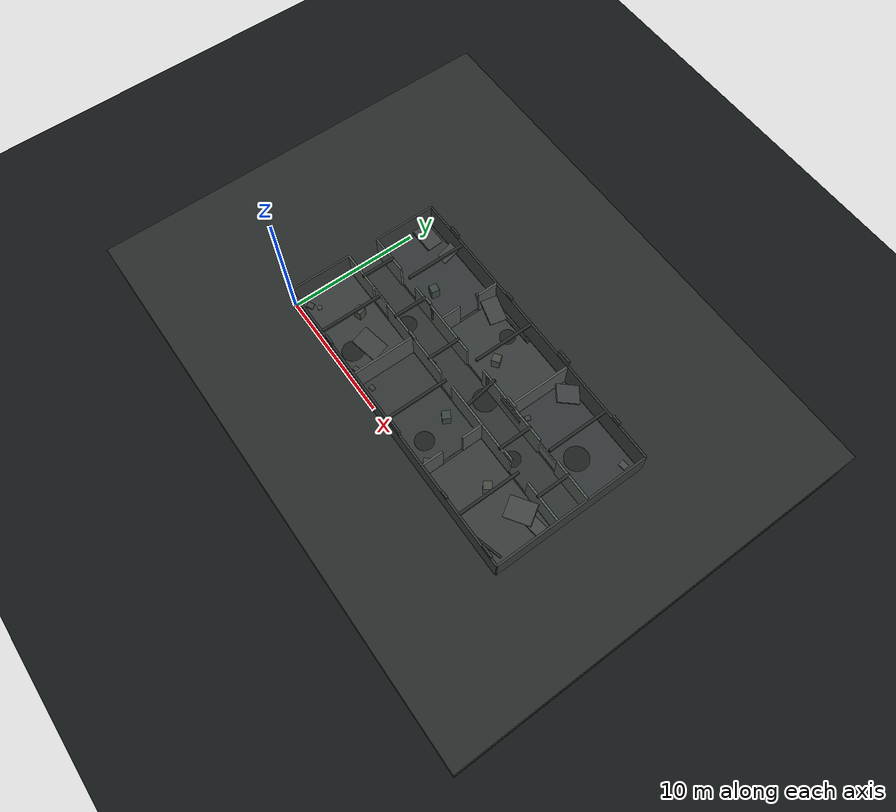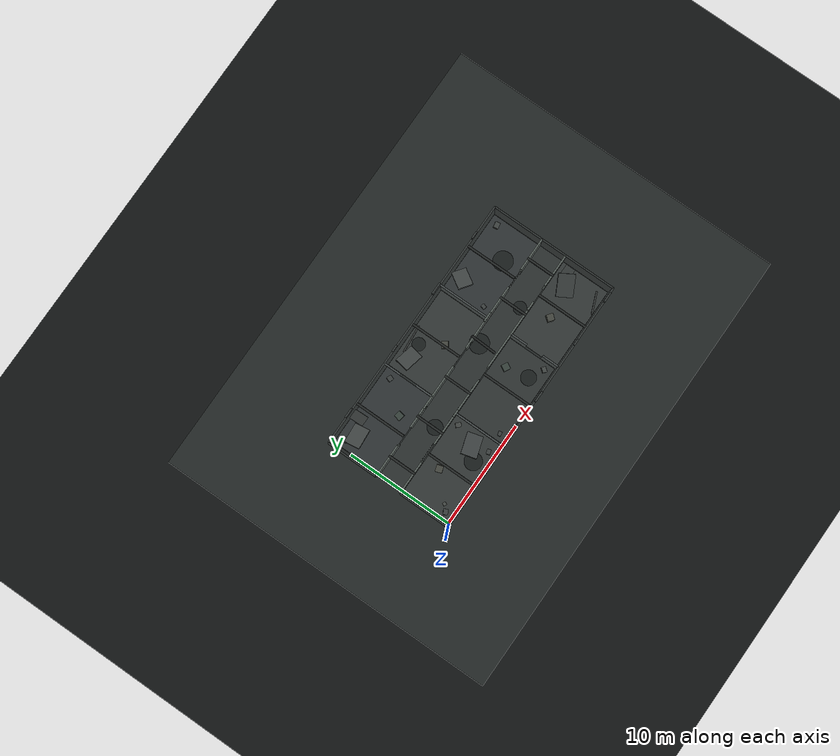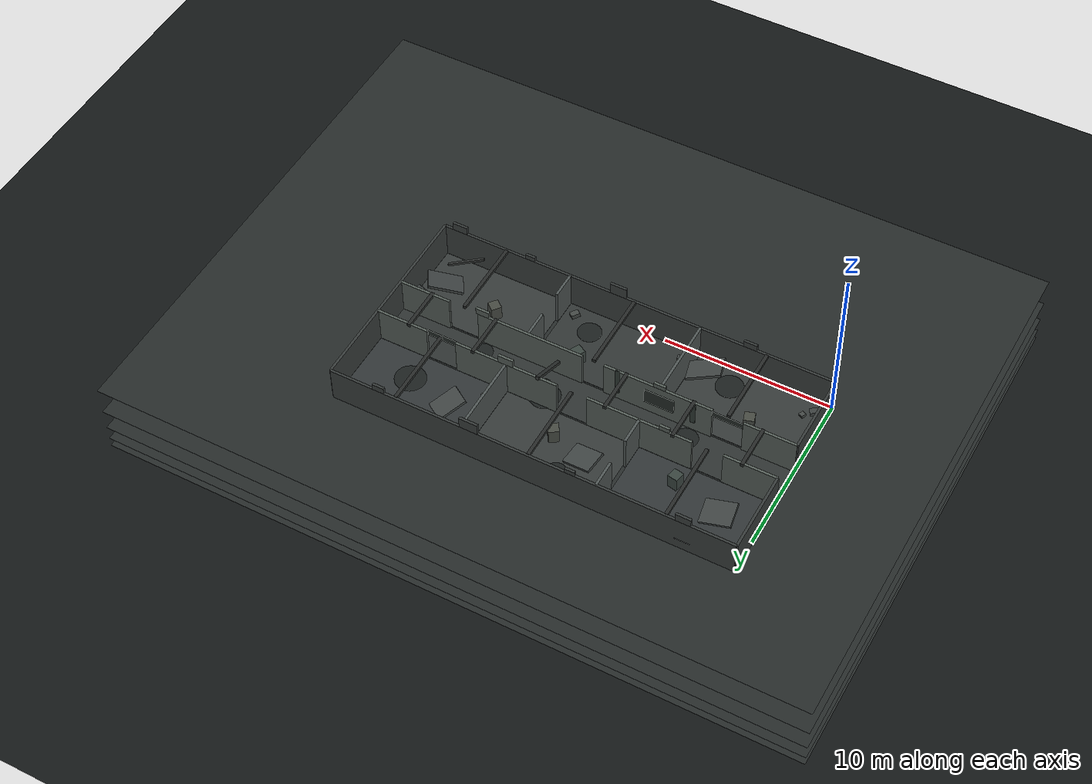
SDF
<sdf version="1.10">
 <world name="sar_building_v2">
  <physics name="1ms" type="ignored">
   <max_step_size>0.001</max_step_size>
   <real_time_factor>1</real_time_factor>
   <real_time_update_rate>1000</real_time_update_rate>
  </physics>
  <plugin name="gz::sim::systems::Physics" filename="gz-sim-physics-system"/>
  <plugin name="gz::sim::systems::UserCommands" filename="gz-sim-user-commands-system"/>
  <plugin name="gz::sim::systems::SceneBroadcaster" filename="gz-sim-scene-broadcaster-system"/>
  <plugin name="gz::sim::systems::Contact" filename="gz-sim-contact-system"/>
  <plugin filename="gz-sim-imu-system" name="gz::sim::systems::Imu"/>
  <plugin filename="gz-sim-sensors-system" name="gz::sim::systems::Sensors">
   <render_engine>ogre2</render_engine>
  </plugin>
  <plugin filename="gz-sim-particle-emitter-system" name="gz::sim::systems::ParticleEmitter"/>
  <gravity>0 0 -9.8</gravity>
  <magnetic_field>5.5645e-06 2.28758e-05 -4.23884e-05</magnetic_field>
  <atmosphere type="adiabatic"/>
  <scene>
   <ambient>0.17 0.19 0.19 1</ambient>
   <background>0.13 0.15 0.15 1</background>
   <shadows>true</shadows>
   <fog><color>0.16 0.18 0.18 1</color><type>exp2</type><density>0.03</density></fog>
  </scene>
  <model name="ground_plane">
   <static>true</static>
   <link name="link">
    <collision name="collision">
     <geometry><plane><normal>0 0 1</normal><size>40 30</size></plane></geometry>
    </collision>
    <visual name="visual">
     <geometry><plane><normal>0 0 1</normal><size>40 30</size></plane></geometry>
     <material>
      <ambient>0.04 0.05 0.05 1</ambient>
      <diffuse>0.07 0.08 0.08 1</diffuse>
      <specular>0.10 0.10 0.10 1</specular>
      <pbr><metal><roughness>0.35</roughness><metalness>0.0</metalness></metal></pbr>
     </material>
    </visual>
    <pose>12 6 0 0 0 0</pose>
    <inertial>
     <mass>1</mass>
     <inertia><ixx>1</ixx><ixy>0</ixy><ixz>0</ixz><iyy>1</iyy><iyz>0</iyz><izz>1</izz></inertia>
    </inertial>
   </link>
  </model>
  <light name="sun" type="directional">
   <pose>12 6 20 0 0 0</pose>
   <intensity>0.32</intensity>
   <direction>-0.4 0.2 -0.9</direction>
   <diffuse>0.55 0.62 0.60 1</diffuse>
   <specular>0.05 0.05 0.05 1</specular>
   <attenuation>
    <range>1000</range>
    <linear>0.01</linear>
    <constant>0.9</constant>
    <quadratic>0.001</quadratic>
   </attenuation>
   <spot><inner_angle>0</inner_angle><outer_angle>0</outer_angle><falloff>0</falloff></spot>
  </light>
  <model name="floor_zones">
   <static>true</static>
   <link name="floor_corridor">
    <pose>12 6 0.01 0 0 0</pose>
    <visual name="v">
     <geometry><box><size>24 2.4 0.02</size></box></geometry>
     <material>
      <ambient>0.07 0.08 0.08 1</ambient>
      <diffuse>0.11 0.12 0.12 1</diffuse>
      <specular>0.15 0.15 0.15 1</specular>
      <pbr><metal><roughness>0.25</roughness><metalness>0.0</metalness></metal></pbr>
     </material>
    </visual>
   </link>
   <link name="floor_s1">
    <pose>4 2.4 0.01 0 0 0</pose>
    <visual name="v">
     <geometry><box><size>7.8 4.6 0.02</size></box></geometry>
     <material>
      <ambient>0.09 0.10 0.10 1</ambient>
      <diffuse>0.14 0.15 0.15 1</diffuse>
      <specular>0.05 0.05 0.05 1</specular>
      <pbr><metal><roughness>0.5</roughness><metalness>0.0</metalness></metal></pbr>
     </material>
    </visual>
   </link>
   <link name="floor_s2">
    <pose>12 2.4 0.01 0 0 0</pose>
    <visual name="v">
     <geometry><box><size>7.8 4.6 0.02</size></box></geometry>
     <material>
      <ambient>0.08 0.09 0.09 1</ambient>
      <diffuse>0.12 0.13 0.13 1</diffuse>
      <specular>0.05 0.05 0.05 1</specular>
      <pbr><metal><roughness>0.5</roughness><metalness>0.0</metalness></metal></pbr>
     </material>
    </visual>
   </link>
   <link name="floor_s3">
    <pose>20 2.4 0.01 0 0 0</pose>
    <visual name="v">
     <geometry><box><size>7.8 4.6 0.02</size></box></geometry>
     <material>
      <ambient>0.09 0.10 0.10 1</ambient>
      <diffuse>0.14 0.15 0.15 1</diffuse>
      <specular>0.05 0.05 0.05 1</specular>
      <pbr><metal><roughness>0.5</roughness><metalness>0.0</metalness></metal></pbr>
     </material>
    </visual>
   </link>
   <link name="floor_n1">
    <pose>4 9.6 0.01 0 0 0</pose>
    <visual name="v">
     <geometry><box><size>7.8 4.6 0.02</size></box></geometry>
     <material>
      <ambient>0.08 0.09 0.10 1</ambient>
      <diffuse>0.12 0.13 0.14 1</diffuse>
      <specular>0.05 0.05 0.05 1</specular>
      <pbr><metal><roughness>0.5</roughness><metalness>0.0</metalness></metal></pbr>
     </material>
    </visual>
   </link>
   <link name="floor_n2">
    <pose>12 9.6 0.01 0 0 0</pose>
    <visual name="v">
     <geometry><box><size>7.8 4.6 0.02</size></box></geometry>
     <material>
      <ambient>0.09 0.10 0.10 1</ambient>
      <diffuse>0.14 0.15 0.15 1</diffuse>
      <specular>0.05 0.05 0.05 1</specular>
      <pbr><metal><roughness>0.5</roughness><metalness>0.0</metalness></metal></pbr>
     </material>
    </visual>
   </link>
   <link name="floor_n3">
    <pose>20 9.6 0.01 0 0 0</pose>
    <visual name="v">
     <geometry><box><size>7.8 4.6 0.02</size></box></geometry>
     <material>
      <ambient>0.08 0.09 0.10 1</ambient>
      <diffuse>0.12 0.13 0.14 1</diffuse>
      <specular>0.05 0.05 0.05 1</specular>
      <pbr><metal><roughness>0.5</roughness><metalness>0.0</metalness></metal></pbr>
     </material>
    </visual>
   </link>
  </model>
  <model name="puddles">
   <static>true</static>
   <link name="p1">
    <pose>6.0 5.6 0.022 0 0 0</pose>
    <visual name="v">
     <cast_shadows>false</cast_shadows>
     <geometry><cylinder><radius>0.7</radius><length>0.004</length></cylinder></geometry>
     <material>
      <ambient>0.01 0.015 0.015 1</ambient>
      <diffuse>0.02 0.03 0.03 1</diffuse>
      <specular>0.6 0.6 0.6 1</specular>
      <pbr><metal><roughness>0.04</roughness><metalness>0.0</metalness></metal></pbr>
     </material>
    </visual>
   </link>
   <link name="p2">
    <pose>14.0 6.6 0.022 0 0 0</pose>
    <visual name="v">
     <cast_shadows>false</cast_shadows>
     <geometry><cylinder><radius>0.9</radius><length>0.004</length></cylinder></geometry>
     <material>
      <ambient>0.01 0.015 0.015 1</ambient>
      <diffuse>0.02 0.03 0.03 1</diffuse>
      <specular>0.6 0.6 0.6 1</specular>
      <pbr><metal><roughness>0.04</roughness><metalness>0.0</metalness></metal></pbr>
     </material>
    </visual>
   </link>
   <link name="p3">
    <pose>18.5 5.5 0.022 0 0 0</pose>
    <visual name="v">
     <cast_shadows>false</cast_shadows>
     <geometry><cylinder><radius>0.6</radius><length>0.004</length></cylinder></geometry>
     <material>
      <ambient>0.01 0.015 0.015 1</ambient>
      <diffuse>0.02 0.03 0.03 1</diffuse>
      <specular>0.6 0.6 0.6 1</specular>
      <pbr><metal><roughness>0.04</roughness><metalness>0.0</metalness></metal></pbr>
     </material>
    </visual>
   </link>
   <link name="p4">
    <pose>5.5 1.3 0.022 0 0 0</pose>
    <visual name="v">
     <cast_shadows>false</cast_shadows>
     <geometry><cylinder><radius>0.8</radius><length>0.004</length></cylinder></geometry>
     <material>
      <ambient>0.01 0.015 0.015 1</ambient>
      <diffuse>0.02 0.03 0.03 1</diffuse>
      <specular>0.6 0.6 0.6 1</specular>
      <pbr><metal><roughness>0.04</roughness><metalness>0.0</metalness></metal></pbr>
     </material>
    </visual>
   </link>
   <link name="p5">
    <pose>21.0 9.0 0.022 0 0 0</pose>
    <visual name="v">
     <cast_shadows>false</cast_shadows>
     <geometry><cylinder><radius>0.9</radius><length>0.004</length></cylinder></geometry>
     <material>
      <ambient>0.01 0.015 0.015 1</ambient>
      <diffuse>0.02 0.03 0.03 1</diffuse>
      <specular>0.6 0.6 0.6 1</specular>
      <pbr><metal><roughness>0.04</roughness><metalness>0.0</metalness></metal></pbr>
     </material>
    </visual>
   </link>
   <link name="p6">
    <pose>11.0 10.8 0.022 0 0 0</pose>
    <visual name="v">
     <cast_shadows>false</cast_shadows>
     <geometry><cylinder><radius>0.6</radius><length>0.004</length></cylinder></geometry>
     <material>
      <ambient>0.01 0.015 0.015 1</ambient>
      <diffuse>0.02 0.03 0.03 1</diffuse>
      <specular>0.6 0.6 0.6 1</specular>
      <pbr><metal><roughness>0.04</roughness><metalness>0.0</metalness></metal></pbr>
     </material>
    </visual>
   </link>
   <link name="p7">
    <pose>14.0 1.5 0.022 0 0 0</pose>
    <visual name="v">
     <cast_shadows>false</cast_shadows>
     <geometry><cylinder><radius>0.7</radius><length>0.004</length></cylinder></geometry>
     <material>
      <ambient>0.01 0.015 0.015 1</ambient>
      <diffuse>0.02 0.03 0.03 1</diffuse>
      <specular>0.6 0.6 0.6 1</specular>
      <pbr><metal><roughness>0.04</roughness><metalness>0.0</metalness></metal></pbr>
     </material>
    </visual>
   </link>
  </model>
  <model name="ruin_structure">
   <static>true</static>
   <link name="j_c1">
    <pose>2 6 2.13 0 0 0</pose>
    <visual name="v">
     <geometry><box><size>0.2 2.6 0.18</size></box></geometry>
     <material><ambient>0.04 0.04 0.04 1</ambient><diffuse>0.07 0.07 0.07 1</diffuse></material>
    </visual>
   </link>
   <link name="j_c2">
    <pose>6 6 2.13 0 0 0</pose>
    <visual name="v">
     <geometry><box><size>0.2 2.6 0.18</size></box></geometry>
     <material><ambient>0.04 0.04 0.04 1</ambient><diffuse>0.07 0.07 0.07 1</diffuse></material>
    </visual>
   </link>
   <link name="j_c3">
    <pose>10 6 2.13 0 0 0</pose>
    <visual name="v">
     <geometry><box><size>0.2 2.6 0.18</size></box></geometry>
     <material><ambient>0.04 0.04 0.04 1</ambient><diffuse>0.07 0.07 0.07 1</diffuse></material>
    </visual>
   </link>
   <link name="j_c4_fallen">
    <pose>14 6.2 1.75 0.45 0 0</pose>
    <visual name="v">
     <geometry><box><size>0.2 2.6 0.18</size></box></geometry>
     <material><ambient>0.04 0.04 0.04 1</ambient><diffuse>0.07 0.07 0.07 1</diffuse></material>
    </visual>
   </link>
   <link name="j_c5">
    <pose>18 6 2.13 0 0 0</pose>
    <visual name="v">
     <geometry><box><size>0.2 2.6 0.18</size></box></geometry>
     <material><ambient>0.04 0.04 0.04 1</ambient><diffuse>0.07 0.07 0.07 1</diffuse></material>
    </visual>
   </link>
   <link name="j_c6">
    <pose>22 6 2.13 0 0 0</pose>
    <visual name="v">
     <geometry><box><size>0.2 2.6 0.18</size></box></geometry>
     <material><ambient>0.04 0.04 0.04 1</ambient><diffuse>0.07 0.07 0.07 1</diffuse></material>
    </visual>
   </link>
   <link name="j_s1">
    <pose>4 2.4 2.13 0 0 0</pose>
    <visual name="v">
     <geometry><box><size>0.2 4.7 0.18</size></box></geometry>
     <material><ambient>0.04 0.04 0.04 1</ambient><diffuse>0.07 0.07 0.07 1</diffuse></material>
    </visual>
   </link>
   <link name="j_s2">
    <pose>12 2.4 2.13 0 0 0</pose>
    <visual name="v">
     <geometry><box><size>0.2 4.7 0.18</size></box></geometry>
     <material><ambient>0.04 0.04 0.04 1</ambient><diffuse>0.07 0.07 0.07 1</diffuse></material>
    </visual>
   </link>
   <link name="j_s3">
    <pose>20 2.4 2.13 0 0 0</pose>
    <visual name="v">
     <geometry><box><size>0.2 4.7 0.18</size></box></geometry>
     <material><ambient>0.04 0.04 0.04 1</ambient><diffuse>0.07 0.07 0.07 1</diffuse></material>
    </visual>
   </link>
   <link name="j_n1">
    <pose>4 9.6 2.13 0 0 0</pose>
    <visual name="v">
     <geometry><box><size>0.2 4.7 0.18</size></box></geometry>
     <material><ambient>0.04 0.04 0.04 1</ambient><diffuse>0.07 0.07 0.07 1</diffuse></material>
    </visual>
   </link>
   <link name="j_n2">
    <pose>12 9.6 2.13 0 0 0</pose>
    <visual name="v">
     <geometry><box><size>0.2 4.7 0.18</size></box></geometry>
     <material><ambient>0.04 0.04 0.04 1</ambient><diffuse>0.07 0.07 0.07 1</diffuse></material>
    </visual>
   </link>
   <link name="j_n3">
    <pose>20 9.6 2.13 0 0 0</pose>
    <visual name="v">
     <geometry><box><size>0.2 4.7 0.18</size></box></geometry>
     <material><ambient>0.04 0.04 0.04 1</ambient><diffuse>0.07 0.07 0.07 1</diffuse></material>
    </visual>
   </link>
   <link name="slab_h1">
    <pose>6.6 2.2 1.85 0.12 0.35 0.3</pose>
    <visual name="v">
     <geometry><box><size>2.0 1.4 0.15</size></box></geometry>
     <material><ambient>0.12 0.13 0.13 1</ambient><diffuse>0.19 0.20 0.20 1</diffuse></material>
    </visual>
   </link>
   <link name="slab_h2">
    <pose>9.5 10.6 1.9 -0.15 0.3 -0.2</pose>
    <visual name="v">
     <geometry><box><size>1.8 1.3 0.15</size></box></geometry>
     <material><ambient>0.12 0.13 0.13 1</ambient><diffuse>0.19 0.20 0.20 1</diffuse></material>
    </visual>
   </link>
   <link name="slab_h3">
    <pose>22.0 3.4 1.8 0.2 -0.3 0.5</pose>
    <visual name="v">
     <geometry><box><size>2.0 1.5 0.15</size></box></geometry>
     <material><ambient>0.12 0.13 0.13 1</ambient><diffuse>0.19 0.20 0.20 1</diffuse></material>
    </visual>
   </link>
   <link name="slab_h4">
    <pose>17.5 10.8 1.9 0.1 0.35 1.0</pose>
    <visual name="v">
     <geometry><box><size>1.7 1.3 0.15</size></box></geometry>
     <material><ambient>0.12 0.13 0.13 1</ambient><diffuse>0.19 0.20 0.20 1</diffuse></material>
    </visual>
   </link>
   <link name="slab_h5">
    <pose>1.8 10.4 1.85 -0.2 0.25 0.1</pose>
    <visual name="v">
     <geometry><box><size>1.8 1.4 0.15</size></box></geometry>
     <material><ambient>0.12 0.13 0.13 1</ambient><diffuse>0.19 0.20 0.20 1</diffuse></material>
    </visual>
   </link>
   <link name="top_n1">
    <pose>3.0 12 2.45 0 0 0</pose>
    <visual name="v">
     <geometry><box><size>0.9 0.15 0.5</size></box></geometry>
     <material><ambient>0.09 0.10 0.10 1</ambient><diffuse>0.14 0.15 0.15 1</diffuse></material>
    </visual>
   </link>
   <link name="top_n2">
    <pose>9.5 12 2.35 0 0 0</pose>
    <visual name="v">
     <geometry><box><size>0.6 0.15 0.3</size></box></geometry>
     <material><ambient>0.09 0.10 0.10 1</ambient><diffuse>0.14 0.15 0.15 1</diffuse></material>
    </visual>
   </link>
   <link name="top_n3">
    <pose>15.5 12 2.55 0 0 0</pose>
    <visual name="v">
     <geometry><box><size>1.1 0.15 0.7</size></box></geometry>
     <material><ambient>0.09 0.10 0.10 1</ambient><diffuse>0.14 0.15 0.15 1</diffuse></material>
    </visual>
   </link>
   <link name="top_n4">
    <pose>21.0 12 2.4 0 0 0</pose>
    <visual name="v">
     <geometry><box><size>0.7 0.15 0.4</size></box></geometry>
     <material><ambient>0.09 0.10 0.10 1</ambient><diffuse>0.14 0.15 0.15 1</diffuse></material>
    </visual>
   </link>
   <link name="top_s1">
    <pose>5.0 0 2.4 0 0 0</pose>
    <visual name="v">
     <geometry><box><size>0.8 0.15 0.4</size></box></geometry>
     <material><ambient>0.09 0.10 0.10 1</ambient><diffuse>0.14 0.15 0.15 1</diffuse></material>
    </visual>
   </link>
   <link name="top_s2">
    <pose>13.0 0 2.55 0 0 0</pose>
    <visual name="v">
     <geometry><box><size>1.0 0.15 0.7</size></box></geometry>
     <material><ambient>0.09 0.10 0.10 1</ambient><diffuse>0.14 0.15 0.15 1</diffuse></material>
    </visual>
   </link>
   <link name="top_s3">
    <pose>18.5 0 2.35 0 0 0</pose>
    <visual name="v">
     <geometry><box><size>0.6 0.15 0.3</size></box></geometry>
     <material><ambient>0.09 0.10 0.10 1</ambient><diffuse>0.14 0.15 0.15 1</diffuse></material>
    </visual>
   </link>
   <link name="top_s4">
    <pose>23.0 0 2.45 0 0 0</pose>
    <visual name="v">
     <geometry><box><size>0.9 0.15 0.5</size></box></geometry>
     <material><ambient>0.09 0.10 0.10 1</ambient><diffuse>0.14 0.15 0.15 1</diffuse></material>
    </visual>
   </link>
   <link name="top_c1">
    <pose>8.0 4.8 2.35 0 0 0</pose>
    <visual name="v">
     <geometry><box><size>0.7 0.15 0.3</size></box></geometry>
     <material><ambient>0.20 0.22 0.21 1</ambient><diffuse>0.30 0.33 0.31 1</diffuse></material>
    </visual>
   </link>
   <link name="top_c2">
    <pose>16.0 7.2 2.45 0 0 0</pose>
    <visual name="v">
     <geometry><box><size>0.9 0.15 0.5</size></box></geometry>
     <material><ambient>0.20 0.22 0.21 1</ambient><diffuse>0.30 0.33 0.31 1</diffuse></material>
    </visual>
   </link>
   <link name="top_c3">
    <pose>6.5 7.2 2.35 0 0 0</pose>
    <visual name="v">
     <geometry><box><size>0.6 0.15 0.3</size></box></geometry>
     <material><ambient>0.20 0.22 0.21 1</ambient><diffuse>0.30 0.33 0.31 1</diffuse></material>
    </visual>
   </link>
   <link name="top_c4">
    <pose>18.8 4.8 2.4 0 0 0</pose>
    <visual name="v">
     <geometry><box><size>0.8 0.15 0.4</size></box></geometry>
     <material><ambient>0.20 0.22 0.21 1</ambient><diffuse>0.30 0.33 0.31 1</diffuse></material>
    </visual>
   </link>
  </model>
  <model name="debris">
   <static>true</static>
   <link name="rub_01">
    <pose>0.7 0.8 0.12 0.1 0.2 0.5</pose>
    <visual name="v">
     <geometry><box><size>0.5 0.4 0.25</size></box></geometry>
     <material><ambient>0.10 0.11 0.11 1</ambient><diffuse>0.17 0.18 0.18 1</diffuse></material>
    </visual>
   </link>
   <link name="rub_02">
    <pose>1.2 1.25 0.08 0.2 0.1 1.1</pose>
    <visual name="v">
     <geometry><box><size>0.3 0.3 0.16</size></box></geometry>
     <material><ambient>0.13 0.14 0.13 1</ambient><diffuse>0.21 0.22 0.21 1</diffuse></material>
    </visual>
   </link>
   <link name="rub_03">
    <pose>6.9 0.7 0.1 0.0 0.15 0.3</pose>
    <visual name="v">
     <geometry><box><size>0.45 0.35 0.2</size></box></geometry>
     <material><ambient>0.10 0.11 0.11 1</ambient><diffuse>0.17 0.18 0.18 1</diffuse></material>
    </visual>
   </link>
   <link name="rub_04">
    <pose>7.3 4.1 0.1 0.15 0.0 0.8</pose>
    <visual name="v">
     <geometry><box><size>0.4 0.5 0.2</size></box></geometry>
     <material><ambient>0.13 0.14 0.13 1</ambient><diffuse>0.21 0.22 0.21 1</diffuse></material>
    </visual>
   </link>
   <link name="rub_05">
    <pose>8.7 0.8 0.09 0.1 0.2 0.2</pose>
    <visual name="v">
     <geometry><box><size>0.4 0.3 0.18</size></box></geometry>
     <material><ambient>0.10 0.11 0.11 1</ambient><diffuse>0.17 0.18 0.18 1</diffuse></material>
    </visual>
   </link>
   <link name="rub_06">
    <pose>15.3 0.8 0.11 0.2 0.1 0.9</pose>
    <visual name="v">
     <geometry><box><size>0.5 0.4 0.22</size></box></geometry>
     <material><ambient>0.13 0.14 0.13 1</ambient><diffuse>0.21 0.22 0.21 1</diffuse></material>
    </visual>
   </link>
   <link name="rub_07">
    <pose>23.2 3.8 0.12 0.0 0.2 1.0</pose>
    <visual name="v">
     <geometry><box><size>0.55 0.4 0.24</size></box></geometry>
     <material><ambient>0.10 0.11 0.11 1</ambient><diffuse>0.17 0.18 0.18 1</diffuse></material>
    </visual>
   </link>
   <link name="rub_08">
    <pose>0.8 11.2 0.1 0.1 0.1 0.6</pose>
    <visual name="v">
     <geometry><box><size>0.5 0.35 0.2</size></box></geometry>
     <material><ambient>0.13 0.14 0.13 1</ambient><diffuse>0.21 0.22 0.21 1</diffuse></material>
    </visual>
   </link>
   <link name="rub_09">
    <pose>7.2 11.1 0.12 0.2 0.0 1.2</pose>
    <visual name="v">
     <geometry><box><size>0.45 0.45 0.24</size></box></geometry>
     <material><ambient>0.10 0.11 0.11 1</ambient><diffuse>0.17 0.18 0.18 1</diffuse></material>
    </visual>
   </link>
   <link name="rub_10">
    <pose>9.0 11.2 0.1 0.15 0.1 0.7</pose>
    <visual name="v">
     <geometry><box><size>0.5 0.4 0.2</size></box></geometry>
     <material><ambient>0.13 0.14 0.13 1</ambient><diffuse>0.21 0.22 0.21 1</diffuse></material>
    </visual>
   </link>
   <link name="rub_11">
    <pose>16.8 8.1 0.09 0.1 0.1 1.3</pose>
    <visual name="v">
     <geometry><box><size>0.4 0.35 0.18</size></box></geometry>
     <material><ambient>0.10 0.11 0.11 1</ambient><diffuse>0.17 0.18 0.18 1</diffuse></material>
    </visual>
   </link>
   <link name="rub_12">
    <pose>23.2 11.2 0.12 0.2 0.1 0.2</pose>
    <visual name="v">
     <geometry><box><size>0.55 0.45 0.24</size></box></geometry>
     <material><ambient>0.13 0.14 0.13 1</ambient><diffuse>0.21 0.22 0.21 1</diffuse></material>
    </visual>
   </link>
   <link name="slab_lean_1">
    <pose>23.1 3.9 0.35 0 -0.5 0</pose>
    <visual name="v">
     <geometry><box><size>1.5 0.9 0.12</size></box></geometry>
     <material><ambient>0.12 0.13 0.13 1</ambient><diffuse>0.19 0.20 0.20 1</diffuse></material>
    </visual>
   </link>
   <link name="slab_lean_2">
    <pose>3.0 11.4 0.35 0.5 0 0</pose>
    <visual name="v">
     <geometry><box><size>0.9 1.5 0.12</size></box></geometry>
     <material><ambient>0.12 0.13 0.13 1</ambient><diffuse>0.19 0.20 0.20 1</diffuse></material>
    </visual>
   </link>
   <link name="beam_fallen_1">
    <pose>11.0 11.55 0.35 0.0 0.18 0.1</pose>
    <visual name="v">
     <geometry><box><size>2.6 0.14 0.14</size></box></geometry>
     <material><ambient>0.07 0.07 0.07 1</ambient><diffuse>0.12 0.12 0.12 1</diffuse></material>
    </visual>
   </link>
   <link name="beam_fallen_2">
    <pose>22.4 0.55 0.5 0.0 0.35 0.35</pose>
    <visual name="v">
     <geometry><box><size>2.2 0.14 0.14</size></box></geometry>
     <material><ambient>0.07 0.07 0.07 1</ambient><diffuse>0.12 0.12 0.12 1</diffuse></material>
    </visual>
   </link>
  </model>
  <model name="grime">
   <static>true</static>
   <link name="soot_1">
    <pose>8.0 4.885 1.2 0 0 0</pose>
    <visual name="v">
     <cast_shadows>false</cast_shadows>
     <geometry><box><size>1.8 0.02 1.0</size></box></geometry>
     <material><ambient>0.01 0.015 0.012 1</ambient><diffuse>0.02 0.03 0.025 1</diffuse></material>
    </visual>
   </link>
   <link name="soot_2">
    <pose>16.0 7.115 1.35 0 0 0</pose>
    <visual name="v">
     <cast_shadows>false</cast_shadows>
     <geometry><box><size>2.2 0.02 0.9</size></box></geometry>
     <material><ambient>0.01 0.015 0.012 1</ambient><diffuse>0.02 0.03 0.025 1</diffuse></material>
    </visual>
   </link>
   <link name="soot_3">
    <pose>4.0 4.885 2.0 0 0 0</pose>
    <visual name="v">
     <cast_shadows>false</cast_shadows>
     <geometry><box><size>1.8 0.02 0.4</size></box></geometry>
     <material><ambient>0.01 0.015 0.012 1</ambient><diffuse>0.02 0.03 0.025 1</diffuse></material>
    </visual>
   </link>
   <link name="soot_4">
    <pose>20.0 7.115 2.0 0 0 0</pose>
    <visual name="v">
     <cast_shadows>false</cast_shadows>
     <geometry><box><size>1.8 0.02 0.4</size></box></geometry>
     <material><ambient>0.01 0.015 0.012 1</ambient><diffuse>0.02 0.03 0.025 1</diffuse></material>
    </visual>
   </link>
   <link name="streak_1">
    <pose>6.0 4.885 1.4 0 0 0</pose>
    <visual name="v">
     <cast_shadows>false</cast_shadows>
     <geometry><box><size>0.3 0.02 1.6</size></box></geometry>
     <material><ambient>0.05 0.07 0.06 1</ambient><diffuse>0.08 0.11 0.09 1</diffuse></material>
    </visual>
   </link>
   <link name="streak_2">
    <pose>10.5 4.885 1.4 0 0 0</pose>
    <visual name="v">
     <cast_shadows>false</cast_shadows>
     <geometry><box><size>0.25 0.02 1.8</size></box></geometry>
     <material><ambient>0.05 0.07 0.06 1</ambient><diffuse>0.08 0.11 0.09 1</diffuse></material>
    </visual>
   </link>
   <link name="streak_3">
    <pose>13.5 7.115 1.4 0 0 0</pose>
    <visual name="v">
     <cast_shadows>false</cast_shadows>
     <geometry><box><size>0.3 0.02 1.7</size></box></geometry>
     <material><ambient>0.05 0.07 0.06 1</ambient><diffuse>0.08 0.11 0.09 1</diffuse></material>
    </visual>
   </link>
   <link name="streak_4">
    <pose>7.0 7.115 1.4 0 0 0</pose>
    <visual name="v">
     <cast_shadows>false</cast_shadows>
     <geometry><box><size>0.25 0.02 1.6</size></box></geometry>
     <material><ambient>0.05 0.07 0.06 1</ambient><diffuse>0.08 0.11 0.09 1</diffuse></material>
    </visual>
   </link>
  </model>
  <model name="fog_layers">
   <static>true</static>
   <link name="fog_1">
    <pose>12 6 1.0 0 0 0</pose>
    <visual name="v">
     <cast_shadows>false</cast_shadows>
     <transparency>0.93</transparency>
     <geometry><box><size>40 30 0.01</size></box></geometry>
     <material><ambient>0.45 0.50 0.48 1</ambient><diffuse>0.45 0.50 0.48 1</diffuse></material>
    </visual>
   </link>
   <link name="fog_2">
    <pose>12 6 1.6 0 0 0</pose>
    <visual name="v">
     <cast_shadows>false</cast_shadows>
     <transparency>0.93</transparency>
     <geometry><box><size>40 30 0.01</size></box></geometry>
     <material><ambient>0.45 0.50 0.48 1</ambient><diffuse>0.45 0.50 0.48 1</diffuse></material>
    </visual>
   </link>
   <link name="fog_3">
    <pose>12 6 2.5 0 0 0</pose>
    <visual name="v">
     <cast_shadows>false</cast_shadows>
     <transparency>0.93</transparency>
     <geometry><box><size>40 30 0.01</size></box></geometry>
     <material><ambient>0.45 0.50 0.48 1</ambient><diffuse>0.45 0.50 0.48 1</diffuse></material>
    </visual>
   </link>
   <link name="fog_4">
    <pose>12 6 3.8 0 0 0</pose>
    <visual name="v">
     <cast_shadows>false</cast_shadows>
     <transparency>0.93</transparency>
     <geometry><box><size>40 30 0.01</size></box></geometry>
     <material><ambient>0.45 0.50 0.48 1</ambient><diffuse>0.45 0.50 0.48 1</diffuse></material>
    </visual>
   </link>
   <link name="fog_5">
    <pose>12 6 5.5 0 0 0</pose>
    <visual name="v">
     <cast_shadows>false</cast_shadows>
     <transparency>0.92</transparency>
     <geometry><box><size>40 30 0.01</size></box></geometry>
     <material><ambient>0.45 0.50 0.48 1</ambient><diffuse>0.45 0.50 0.48 1</diffuse></material>
    </visual>
   </link>
  </model>
  <model name="smoke">
   <static>true</static>
   <link name="sm1">
    <pose>6.0 3.8 0.1 0 0 0</pose>
    <particle_emitter name="smoke_1" type="box">
     <emitting>false</emitting>
     <size>1.5 1.5 0.1</size>
     <particle_size>0.9 0.9 0.9</particle_size>
     <lifetime>9</lifetime>
     <rate>5</rate>
     <scale_rate>0.25</scale_rate>
     <min_velocity>0.05</min_velocity>
     <max_velocity>0.15</max_velocity>
     <color_start>0.55 0.58 0.56 0.35</color_start>
     <color_end>0.40 0.42 0.41 0.0</color_end>
    </particle_emitter>
   </link>
   <link name="sm2">
    <pose>10.5 1.2 0.1 0 0 0</pose>
    <particle_emitter name="smoke_2" type="box">
     <emitting>false</emitting>
     <size>1.5 1.5 0.1</size>
     <particle_size>0.9 0.9 0.9</particle_size>
     <lifetime>9</lifetime>
     <rate>5</rate>
     <scale_rate>0.25</scale_rate>
     <min_velocity>0.05</min_velocity>
     <max_velocity>0.15</max_velocity>
     <color_start>0.55 0.58 0.56 0.35</color_start>
     <color_end>0.40 0.42 0.41 0.0</color_end>
    </particle_emitter>
   </link>
   <link name="sm3">
    <pose>18.0 1.0 0.1 0 0 0</pose>
    <particle_emitter name="smoke_3" type="box">
     <emitting>false</emitting>
     <size>1.5 1.5 0.1</size>
     <particle_size>0.9 0.9 0.9</particle_size>
     <lifetime>9</lifetime>
     <rate>5</rate>
     <scale_rate>0.25</scale_rate>
     <min_velocity>0.05</min_velocity>
     <max_velocity>0.15</max_velocity>
     <color_start>0.55 0.58 0.56 0.35</color_start>
     <color_end>0.40 0.42 0.41 0.0</color_end>
    </particle_emitter>
   </link>
   <link name="sm4">
    <pose>22.5 3.5 0.1 0 0 0</pose>
    <particle_emitter name="smoke_4" type="box">
     <emitting>false</emitting>
     <size>1.5 1.5 0.1</size>
     <particle_size>0.9 0.9 0.9</particle_size>
     <lifetime>9</lifetime>
     <rate>5</rate>
     <scale_rate>0.25</scale_rate>
     <min_velocity>0.05</min_velocity>
     <max_velocity>0.15</max_velocity>
     <color_start>0.55 0.58 0.56 0.35</color_start>
     <color_end>0.40 0.42 0.41 0.0</color_end>
    </particle_emitter>
   </link>
   <link name="sm5">
    <pose>2.5 10.8 0.1 0 0 0</pose>
    <particle_emitter name="smoke_5" type="box">
     <emitting>false</emitting>
     <size>1.5 1.5 0.1</size>
     <particle_size>0.9 0.9 0.9</particle_size>
     <lifetime>9</lifetime>
     <rate>5</rate>
     <scale_rate>0.25</scale_rate>
     <min_velocity>0.05</min_velocity>
     <max_velocity>0.15</max_velocity>
     <color_start>0.55 0.58 0.56 0.35</color_start>
     <color_end>0.40 0.42 0.41 0.0</color_end>
    </particle_emitter>
   </link>
   <link name="sm6">
    <pose>14.0 11.0 0.1 0 0 0</pose>
    <particle_emitter name="smoke_6" type="box">
     <emitting>false</emitting>
     <size>1.5 1.5 0.1</size>
     <particle_size>0.9 0.9 0.9</particle_size>
     <lifetime>9</lifetime>
     <rate>5</rate>
     <scale_rate>0.25</scale_rate>
     <min_velocity>0.05</min_velocity>
     <max_velocity>0.15</max_velocity>
     <color_start>0.55 0.58 0.56 0.35</color_start>
     <color_end>0.40 0.42 0.41 0.0</color_end>
    </particle_emitter>
   </link>
   <link name="sm7">
    <pose>21.5 11.0 0.1 0 0 0</pose>
    <particle_emitter name="smoke_7" type="box">
     <emitting>false</emitting>
     <size>1.5 1.5 0.1</size>
     <particle_size>0.9 0.9 0.9</particle_size>
     <lifetime>9</lifetime>
     <rate>5</rate>
     <scale_rate>0.25</scale_rate>
     <min_velocity>0.05</min_velocity>
     <max_velocity>0.15</max_velocity>
     <color_start>0.55 0.58 0.56 0.35</color_start>
     <color_end>0.40 0.42 0.41 0.0</color_end>
    </particle_emitter>
   </link>
   <link name="sm8">
    <pose>6.0 6.0 0.1 0 0 0</pose>
    <particle_emitter name="smoke_8" type="box">
     <emitting>false</emitting>
     <size>1.5 1.5 0.1</size>
     <particle_size>1.0 1.0 1.0</particle_size>
     <lifetime>10</lifetime>
     <rate>6</rate>
     <scale_rate>0.25</scale_rate>
     <min_velocity>0.05</min_velocity>
     <max_velocity>0.12</max_velocity>
     <color_start>0.55 0.58 0.56 0.30</color_start>
     <color_end>0.40 0.42 0.41 0.0</color_end>
    </particle_emitter>
   </link>
   <link name="sm9">
    <pose>18.0 6.0 0.1 0 0 0</pose>
    <particle_emitter name="smoke_9" type="box">
     <emitting>false</emitting>
     <size>1.5 1.5 0.1</size>
     <particle_size>1.0 1.0 1.0</particle_size>
     <lifetime>10</lifetime>
     <rate>6</rate>
     <scale_rate>0.25</scale_rate>
     <min_velocity>0.05</min_velocity>
     <max_velocity>0.12</max_velocity>
     <color_start>0.55 0.58 0.56 0.30</color_start>
     <color_end>0.40 0.42 0.41 0.0</color_end>
    </particle_emitter>
   </link>
  </model>
  <model name="sar_building_structure">
   <static>true</static>
   <link name="wall_corr_south_A">
    <pose>1.55 4.8 1.1 0 0 0</pose>
    <collision name="c"><geometry><box><size>3.1 0.15 2.2</size></box></geometry></collision>
    <visual name="v">
     <geometry><box><size>3.1 0.15 2.2</size></box></geometry>
     <material>
      <ambient>0.20 0.22 0.21 1</ambient>
      <diffuse>0.30 0.33 0.31 1</diffuse>
      <specular>0.04 0.04 0.04 1</specular>
     </material>
    </visual>
   </link>
   <link name="wall_corr_south_B">
    <pose>8.125 4.8 1.1 0 0 0</pose>
    <collision name="c"><geometry><box><size>6.45 0.15 2.2</size></box></geometry></collision>
    <visual name="v">
     <geometry><box><size>6.45 0.15 2.2</size></box></geometry>
     <material>
      <ambient>0.20 0.22 0.21 1</ambient>
      <diffuse>0.30 0.33 0.31 1</diffuse>
      <specular>0.04 0.04 0.04 1</specular>
     </material>
    </visual>
   </link>
   <link name="wall_corr_south_C">
    <pose>15.875 4.8 1.1 0 0 0</pose>
    <collision name="c"><geometry><box><size>6.45 0.15 2.2</size></box></geometry></collision>
    <visual name="v">
     <geometry><box><size>6.45 0.15 2.2</size></box></geometry>
     <material>
      <ambient>0.20 0.22 0.21 1</ambient>
      <diffuse>0.30 0.33 0.31 1</diffuse>
      <specular>0.04 0.04 0.04 1</specular>
     </material>
    </visual>
   </link>
   <link name="wall_corr_south_D">
    <pose>22.45 4.8 1.1 0 0 0</pose>
    <collision name="c"><geometry><box><size>3.1 0.15 2.2</size></box></geometry></collision>
    <visual name="v">
     <geometry><box><size>3.1 0.15 2.2</size></box></geometry>
     <material>
      <ambient>0.20 0.22 0.21 1</ambient>
      <diffuse>0.30 0.33 0.31 1</diffuse>
      <specular>0.04 0.04 0.04 1</specular>
     </material>
    </visual>
   </link>
   <link name="wall_corr_north_E">
    <pose>1.55 7.2 1.1 0 0 0</pose>
    <collision name="c"><geometry><box><size>3.1 0.15 2.2</size></box></geometry></collision>
    <visual name="v">
     <geometry><box><size>3.1 0.15 2.2</size></box></geometry>
     <material>
      <ambient>0.20 0.22 0.21 1</ambient>
      <diffuse>0.30 0.33 0.31 1</diffuse>
      <specular>0.04 0.04 0.04 1</specular>
     </material>
    </visual>
   </link>
   <link name="wall_corr_north_F">
    <pose>8.0 7.2 1.1 0 0 0</pose>
    <collision name="c"><geometry><box><size>6.2 0.15 2.2</size></box></geometry></collision>
    <visual name="v">
     <geometry><box><size>6.2 0.15 2.2</size></box></geometry>
     <material>
      <ambient>0.20 0.22 0.21 1</ambient>
      <diffuse>0.30 0.33 0.31 1</diffuse>
      <specular>0.04 0.04 0.04 1</specular>
     </material>
    </visual>
   </link>
   <link name="wall_corr_north_G">
    <pose>16.0 7.2 1.1 0 0 0</pose>
    <collision name="c"><geometry><box><size>6.2 0.15 2.2</size></box></geometry></collision>
    <visual name="v">
     <geometry><box><size>6.2 0.15 2.2</size></box></geometry>
     <material>
      <ambient>0.20 0.22 0.21 1</ambient>
      <diffuse>0.30 0.33 0.31 1</diffuse>
      <specular>0.04 0.04 0.04 1</specular>
     </material>
    </visual>
   </link>
   <link name="wall_corr_north_H">
    <pose>22.45 7.2 1.1 0 0 0</pose>
    <collision name="c"><geometry><box><size>3.1 0.15 2.2</size></box></geometry></collision>
    <visual name="v">
     <geometry><box><size>3.1 0.15 2.2</size></box></geometry>
     <material>
      <ambient>0.20 0.22 0.21 1</ambient>
      <diffuse>0.30 0.33 0.31 1</diffuse>
      <specular>0.04 0.04 0.04 1</specular>
     </material>
    </visual>
   </link>
   <link name="wall_div_south_I">
    <pose>8 2.4 1.1 0 0 0</pose>
    <collision name="c"><geometry><box><size>0.15 4.8 2.2</size></box></geometry></collision>
    <visual name="v">
     <geometry><box><size>0.15 4.8 2.2</size></box></geometry>
     <material>
      <ambient>0.17 0.19 0.19 1</ambient>
      <diffuse>0.26 0.28 0.28 1</diffuse>
      <specular>0.04 0.04 0.04 1</specular>
     </material>
    </visual>
   </link>
   <link name="wall_div_south_J1">
    <pose>16 0.8 1.1 0 0 0</pose>
    <collision name="c"><geometry><box><size>0.15 1.6 2.2</size></box></geometry></collision>
    <visual name="v">
     <geometry><box><size>0.15 1.6 2.2</size></box></geometry>
     <material>
      <ambient>0.17 0.19 0.19 1</ambient>
      <diffuse>0.26 0.28 0.28 1</diffuse>
      <specular>0.04 0.04 0.04 1</specular>
     </material>
    </visual>
   </link>
   <link name="wall_div_south_J2">
    <pose>16 4.0 1.1 0 0 0</pose>
    <collision name="c"><geometry><box><size>0.15 1.6 2.2</size></box></geometry></collision>
    <visual name="v">
     <geometry><box><size>0.15 1.6 2.2</size></box></geometry>
     <material>
      <ambient>0.17 0.19 0.19 1</ambient>
      <diffuse>0.26 0.28 0.28 1</diffuse>
      <specular>0.04 0.04 0.04 1</specular>
     </material>
    </visual>
   </link>
   <link name="wall_div_north_K1">
    <pose>8 8.0 1.1 0 0 0</pose>
    <collision name="c"><geometry><box><size>0.15 1.6 2.2</size></box></geometry></collision>
    <visual name="v">
     <geometry><box><size>0.15 1.6 2.2</size></box></geometry>
     <material>
      <ambient>0.17 0.19 0.19 1</ambient>
      <diffuse>0.26 0.28 0.28 1</diffuse>
      <specular>0.04 0.04 0.04 1</specular>
     </material>
    </visual>
   </link>
   <link name="wall_div_north_K2">
    <pose>8 11.2 1.1 0 0 0</pose>
    <collision name="c"><geometry><box><size>0.15 1.6 2.2</size></box></geometry></collision>
    <visual name="v">
     <geometry><box><size>0.15 1.6 2.2</size></box></geometry>
     <material>
      <ambient>0.17 0.19 0.19 1</ambient>
      <diffuse>0.26 0.28 0.28 1</diffuse>
      <specular>0.04 0.04 0.04 1</specular>
     </material>
    </visual>
   </link>
   <link name="wall_div_north_L">
    <pose>16 9.6 1.1 0 0 0</pose>
    <collision name="c"><geometry><box><size>0.15 4.8 2.2</size></box></geometry></collision>
    <visual name="v">
     <geometry><box><size>0.15 4.8 2.2</size></box></geometry>
     <material>
      <ambient>0.17 0.19 0.19 1</ambient>
      <diffuse>0.26 0.28 0.28 1</diffuse>
      <specular>0.04 0.04 0.04 1</specular>
     </material>
    </visual>
   </link>
   <link name="wall_ext_south_M">
    <pose>12 0 1.1 0 0 0</pose>
    <collision name="c"><geometry><box><size>24 0.15 2.2</size></box></geometry></collision>
    <visual name="v">
     <geometry><box><size>24 0.15 2.2</size></box></geometry>
     <material>
      <ambient>0.09 0.10 0.10 1</ambient>
      <diffuse>0.14 0.15 0.15 1</diffuse>
      <specular>0.04 0.04 0.04 1</specular>
     </material>
    </visual>
   </link>
   <link name="wall_ext_north_N">
    <pose>12 12 1.1 0 0 0</pose>
    <collision name="c"><geometry><box><size>24 0.15 2.2</size></box></geometry></collision>
    <visual name="v">
     <geometry><box><size>24 0.15 2.2</size></box></geometry>
     <material>
      <ambient>0.09 0.10 0.10 1</ambient>
      <diffuse>0.14 0.15 0.15 1</diffuse>
      <specular>0.04 0.04 0.04 1</specular>
     </material>
    </visual>
   </link>
   <link name="wall_ext_west_sub1">
    <pose>0 2.4 1.1 0 0 0</pose>
    <collision name="c"><geometry><box><size>0.15 4.8 2.2</size></box></geometry></collision>
    <visual name="v">
     <geometry><box><size>0.15 4.8 2.2</size></box></geometry>
     <material>
      <ambient>0.09 0.10 0.10 1</ambient>
      <diffuse>0.14 0.15 0.15 1</diffuse>
      <specular>0.04 0.04 0.04 1</specular>
     </material>
    </visual>
   </link>
   <link name="wall_ext_west_sub2">
    <pose>0 9.6 1.1 0 0 0</pose>
    <collision name="c"><geometry><box><size>0.15 4.8 2.2</size></box></geometry></collision>
    <visual name="v">
     <geometry><box><size>0.15 4.8 2.2</size></box></geometry>
     <material>
      <ambient>0.09 0.10 0.10 1</ambient>
      <diffuse>0.14 0.15 0.15 1</diffuse>
      <specular>0.04 0.04 0.04 1</specular>
     </material>
    </visual>
   </link>
   <link name="wall_ext_east_O">
    <pose>24 6 1.1 0 0 0</pose>
    <collision name="c"><geometry><box><size>0.15 12 2.2</size></box></geometry></collision>
    <visual name="v">
     <geometry><box><size>0.15 12 2.2</size></box></geometry>
     <material>
      <ambient>0.09 0.10 0.10 1</ambient>
      <diffuse>0.14 0.15 0.15 1</diffuse>
      <specular>0.04 0.04 0.04 1</specular>
     </material>
    </visual>
   </link>
   <link name="clutter_south1_a">
    <pose>3.4 3.3 0.45 0 0 0.3</pose>
    <collision name="c"><geometry><box><size>0.6 0.6 0.9</size></box></geometry></collision>
    <visual name="v">
     <geometry><box><size>0.6 0.6 0.9</size></box></geometry>
     <material>
      <ambient>0.14 0.14 0.12 1</ambient>
      <diffuse>0.22 0.22 0.19 1</diffuse>
      <specular>0.03 0.03 0.03 1</specular>
     </material>
    </visual>
   </link>
   <link name="clutter_south2_a">
    <pose>13.6 3.6 0.45 0 0 -0.5</pose>
    <collision name="c"><geometry><box><size>0.6 0.6 0.9</size></box></geometry></collision>
    <visual name="v">
     <geometry><box><size>0.6 0.6 0.9</size></box></geometry>
     <material>
      <ambient>0.10 0.13 0.12 1</ambient>
      <diffuse>0.16 0.20 0.18 1</diffuse>
      <specular>0.03 0.03 0.03 1</specular>
     </material>
    </visual>
   </link>
   <link name="clutter_south3_a">
    <pose>19.2 2.9 0.45 0 0 0.9</pose>
    <collision name="c"><geometry><box><size>0.6 0.6 0.9</size></box></geometry></collision>
    <visual name="v">
     <geometry><box><size>0.6 0.6 0.9</size></box></geometry>
     <material>
      <ambient>0.14 0.14 0.12 1</ambient>
      <diffuse>0.22 0.22 0.19 1</diffuse>
      <specular>0.03 0.03 0.03 1</specular>
     </material>
    </visual>
   </link>
   <link name="clutter_north1_a">
    <pose>5.1 8.6 0.45 0 0 -0.2</pose>
    <collision name="c"><geometry><box><size>0.6 0.6 0.9</size></box></geometry></collision>
    <visual name="v">
     <geometry><box><size>0.6 0.6 0.9</size></box></geometry>
     <material>
      <ambient>0.10 0.13 0.12 1</ambient>
      <diffuse>0.16 0.20 0.18 1</diffuse>
      <specular>0.03 0.03 0.03 1</specular>
     </material>
    </visual>
   </link>
   <link name="clutter_north2_a">
    <pose>12.2 8.9 0.45 0 0 0.6</pose>
    <collision name="c"><geometry><box><size>0.6 0.6 0.9</size></box></geometry></collision>
    <visual name="v">
     <geometry><box><size>0.6 0.6 0.9</size></box></geometry>
     <material>
      <ambient>0.14 0.14 0.12 1</ambient>
      <diffuse>0.22 0.22 0.19 1</diffuse>
      <specular>0.03 0.03 0.03 1</specular>
     </material>
    </visual>
   </link>
  </model>
 </world>
</sdf>
